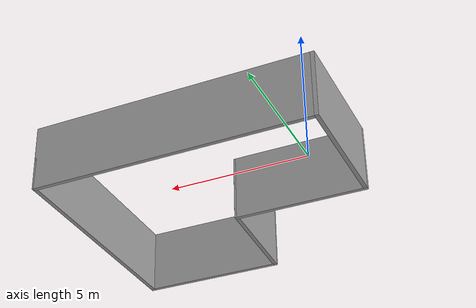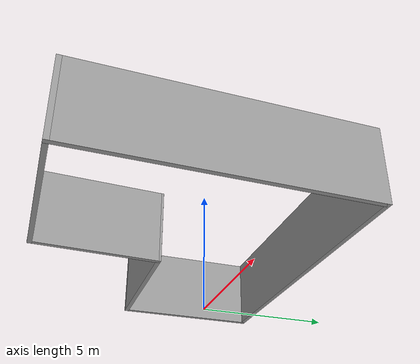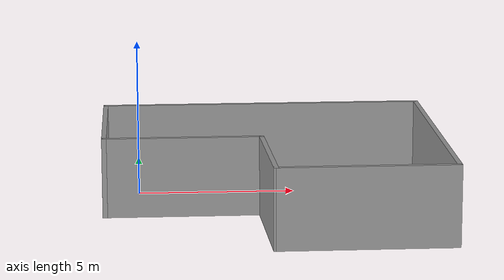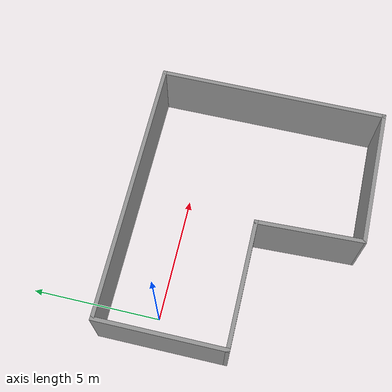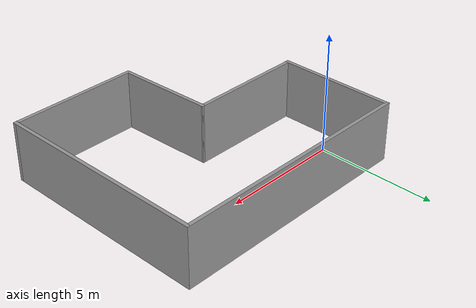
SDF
<?xml version='1.0'?>
<sdf version='1.7'>
  <model name='my_env'>
    <pose>4.11354 -2.38797 0 0 -0 0</pose>
    <link name='Wall_10'>
      <collision name='Wall_10_Collision'>
        <geometry>
          <box>
            <size>5.5 0.15 2.5</size>
          </box>
        </geometry>
        <pose>0 0 1.25 0 -0 0</pose>
      </collision>
      <visual name='Wall_10_Visual'>
        <pose>0 0 1.25 0 -0 0</pose>
        <geometry>
          <box>
            <size>5.5 0.15 2.5</size>
          </box>
        </geometry>
        <material>
          <script>
            <uri>file://media/materials/scripts/gazebo.material</uri>
            <name>Gazebo/Grey</name>
          </script>
          <ambient>1 1 1 1</ambient>
        </material>
        <meta>
          <layer>0</layer>
        </meta>
      </visual>
      <pose>2.5 -4.42362 0 0 -0 3.14159</pose>
    </link>
    <link name='Wall_11'>
      <collision name='Wall_11_Collision'>
        <geometry>
          <box>
            <size>4.15281 0.15 2.5</size>
          </box>
        </geometry>
        <pose>0 0 1.25 0 -0 0</pose>
      </collision>
      <visual name='Wall_11_Visual'>
        <pose>0 0 1.25 0 -0 0</pose>
        <geometry>
          <box>
            <size>4.15281 0.15 2.5</size>
          </box>
        </geometry>
        <material>
          <script>
            <uri>file://media/materials/scripts/gazebo.material</uri>
            <name>Gazebo/Grey</name>
          </script>
          <ambient>1 1 1 1</ambient>
        </material>
        <meta>
          <layer>0</layer>
        </meta>
      </visual>
      <pose>-0.25 -2.42362 0 0 -0 1.60828</pose>
    </link>
    <link name='Wall_5'>
      <collision name='Wall_5_Collision'>
        <geometry>
          <box>
            <size>5 0.15 2.5</size>
          </box>
        </geometry>
        <pose>0 0 1.25 0 -0 0</pose>
      </collision>
      <visual name='Wall_5_Visual'>
        <pose>0 0 1.25 0 -0 0</pose>
        <geometry>
          <box>
            <size>5 0.15 2.5</size>
          </box>
        </geometry>
        <material>
          <script>
            <uri>file://media/materials/scripts/gazebo.material</uri>
            <name>Gazebo/Grey</name>
          </script>
          <ambient>1 1 1 1</ambient>
        </material>
        <meta>
          <layer>0</layer>
        </meta>
      </visual>
      <pose>-2.75 -0.423621 0 0 -0 3.14159</pose>
    </link>
    <link name='Wall_6'>
      <collision name='Wall_6_Collision'>
        <geometry>
          <box>
            <size>5 0.15 2.5</size>
          </box>
        </geometry>
        <pose>0 0 1.25 0 -0 0</pose>
      </collision>
      <visual name='Wall_6_Visual'>
        <pose>0 0 1.25 0 -0 0</pose>
        <geometry>
          <box>
            <size>5 0.15 2.5</size>
          </box>
        </geometry>
        <material>
          <script>
            <uri>file://media/materials/scripts/gazebo.material</uri>
            <name>Gazebo/Grey</name>
          </script>
          <ambient>1 1 1 1</ambient>
        </material>
        <meta>
          <layer>0</layer>
        </meta>
      </visual>
      <pose>-5.175 2.00138 0 0 -0 1.5708</pose>
    </link>
    <link name='Wall_8'>
      <collision name='Wall_8_Collision'>
        <geometry>
          <box>
            <size>10.5 0.15 2.5</size>
          </box>
        </geometry>
        <pose>0 0 1.25 0 -0 0</pose>
      </collision>
      <visual name='Wall_8_Visual'>
        <pose>0 0 1.25 0 -0 0</pose>
        <geometry>
          <box>
            <size>10.5 0.15 2.5</size>
          </box>
        </geometry>
        <material>
          <script>
            <uri>file://media/materials/scripts/gazebo.material</uri>
            <name>Gazebo/Grey</name>
          </script>
          <ambient>1 1 1 1</ambient>
        </material>
        <meta>
          <layer>0</layer>
        </meta>
      </visual>
      <pose>0 4.42638 0 0 -0 0</pose>
    </link>
    <link name='Wall_9'>
      <collision name='Wall_9_Collision'>
        <geometry>
          <box>
            <size>9 0.15 2.5</size>
          </box>
        </geometry>
        <pose>0 0 1.25 0 -0 0</pose>
      </collision>
      <visual name='Wall_9_Visual'>
        <pose>0 0 1.25 0 -0 0</pose>
        <geometry>
          <box>
            <size>9 0.15 2.5</size>
          </box>
        </geometry>
        <material>
          <script>
            <uri>file://media/materials/scripts/gazebo.material</uri>
            <name>Gazebo/Grey</name>
          </script>
          <ambient>1 1 1 1</ambient>
        </material>
        <meta>
          <layer>0</layer>
        </meta>
      </visual>
      <pose>5.175 0.001379 0 0 -0 -1.5708</pose>
    </link>
    <static>1</static>
  </model>
</sdf>
